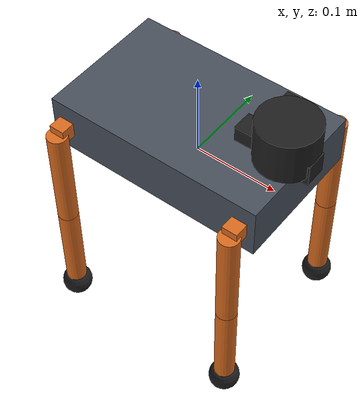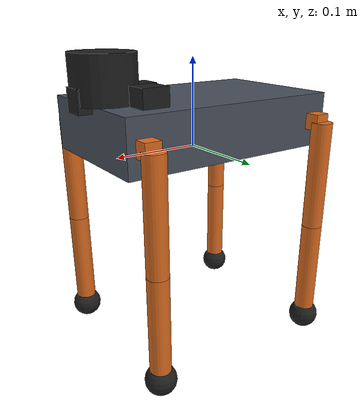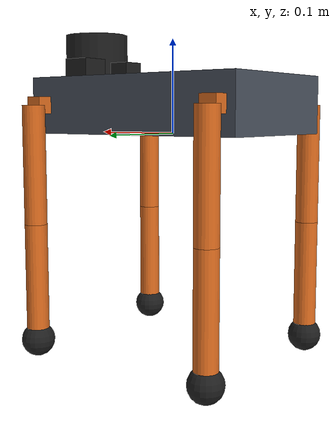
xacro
<?xml version="1.0"?>
<robot name="quadruped" xmlns:xacro="http://www.ros.org/wiki/xacro">

  <xacro:property name="base_length" value="0.26"/>
  <xacro:property name="base_width" value="0.16"/>
  <xacro:property name="base_height" value="0.06"/>
  <xacro:property name="coxa_length" value="0.035563"/>
  <xacro:property name="femur_length" value="0.127063"/>
  <xacro:property name="tibia_length" value="0.127183"/>
  <xacro:property name="link_radius" value="0.012"/>
  <xacro:property name="foot_radius" value="0.018"/>
  <xacro:property name="leg_mass" value="0.10"/>

  <material name="body_gray">
    <color rgba="0.28 0.31 0.36 1.0"/>
  </material>
  <material name="leg_orange">
    <color rgba="0.86 0.42 0.12 1.0"/>
  </material>
  <material name="sensor_black">
    <color rgba="0.12 0.12 0.12 1.0"/>
  </material>

  <link name="base_link">
    <visual>
      <origin xyz="0 0 0" rpy="0 0 0"/>
      <geometry>
        <box size="${base_length} ${base_width} ${base_height}"/>
      </geometry>
      <material name="body_gray"/>
    </visual>
    <collision>
      <origin xyz="0 0 0" rpy="0 0 0"/>
      <geometry>
        <box size="${base_length} ${base_width} ${base_height}"/>
      </geometry>
    </collision>
    <inertial>
      <origin xyz="0 0 0" rpy="0 0 0"/>
      <mass value="1.2"/>
      <inertia ixx="0.02" ixy="0.0" ixz="0.0" iyy="0.03" iyz="0.0" izz="0.04"/>
    </inertial>
  </link>

  <link name="base_footprint"/>
  <joint name="base_footprint_joint" type="fixed">
    <parent link="base_footprint"/>
    <child link="base_link"/>
    <origin xyz="0 0 ${base_height / 2.0}" rpy="0 0 0"/>
  </joint>

  <xacro:macro name="leg" params="prefix mount_x mount_y side_sign">
    <link name="${prefix}_coxa_link">
      <visual>
        <origin xyz="0 ${side_sign * coxa_length / 2.0} 0" rpy="0 0 0"/>
        <geometry>
          <box size="0.018 ${coxa_length} 0.018"/>
        </geometry>
        <material name="leg_orange"/>
      </visual>
      <collision>
        <origin xyz="0 ${side_sign * coxa_length / 2.0} 0" rpy="0 0 0"/>
        <geometry>
          <box size="0.018 ${coxa_length} 0.018"/>
        </geometry>
      </collision>
      <inertial>
        <origin xyz="0 ${side_sign * coxa_length / 2.0} 0" rpy="0 0 0"/>
        <mass value="${leg_mass}"/>
        <inertia ixx="0.001" ixy="0.0" ixz="0.0" iyy="0.001" iyz="0.0" izz="0.001"/>
      </inertial>
    </link>

    <joint name="${prefix}_coxa_joint" type="revolute">
      <parent link="base_link"/>
      <child link="${prefix}_coxa_link"/>
      <origin xyz="${mount_x} ${mount_y} 0.0" rpy="0 0 0"/>
      <axis xyz="1 0 0"/>
      <limit lower="-1.5708" upper="1.5708" effort="50.0" velocity="6.0"/>
    </joint>

    <link name="${prefix}_femur_link">
      <visual>
        <origin xyz="0 0 ${-femur_length / 2.0}" rpy="0 0 0"/>
        <geometry>
          <cylinder radius="${link_radius}" length="${femur_length}"/>
        </geometry>
        <material name="leg_orange"/>
      </visual>
      <collision>
        <origin xyz="0 0 ${-femur_length / 2.0}" rpy="0 0 0"/>
        <geometry>
          <cylinder radius="${link_radius}" length="${femur_length}"/>
        </geometry>
      </collision>
      <inertial>
        <origin xyz="0 0 ${-femur_length / 2.0}" rpy="0 0 0"/>
        <mass value="${leg_mass}"/>
        <inertia ixx="0.001" ixy="0.0" ixz="0.0" iyy="0.001" iyz="0.0" izz="0.001"/>
      </inertial>
    </link>

    <joint name="${prefix}_femur_joint" type="revolute">
      <parent link="${prefix}_coxa_link"/>
      <child link="${prefix}_femur_link"/>
      <origin xyz="0 ${side_sign * coxa_length} 0" rpy="0 0 0"/>
      <axis xyz="0 1 0"/>
      <limit lower="-2.0944" upper="2.0944" effort="50.0" velocity="6.0"/>
    </joint>

    <link name="${prefix}_tibia_link">
      <visual>
        <origin xyz="0 0 ${-tibia_length / 2.0}" rpy="0 0 0"/>
        <geometry>
          <cylinder radius="${link_radius}" length="${tibia_length}"/>
        </geometry>
        <material name="leg_orange"/>
      </visual>
      <collision>
        <origin xyz="0 0 ${-tibia_length / 2.0}" rpy="0 0 0"/>
        <geometry>
          <cylinder radius="${link_radius}" length="${tibia_length}"/>
        </geometry>
      </collision>
      <inertial>
        <origin xyz="0 0 ${-tibia_length / 2.0}" rpy="0 0 0"/>
        <mass value="${leg_mass}"/>
        <inertia ixx="0.001" ixy="0.0" ixz="0.0" iyy="0.001" iyz="0.0" izz="0.001"/>
      </inertial>
    </link>

    <joint name="${prefix}_tibia_joint" type="revolute">
      <parent link="${prefix}_femur_link"/>
      <child link="${prefix}_tibia_link"/>
      <origin xyz="0 0 ${-femur_length}" rpy="0 0 0"/>
      <axis xyz="0 1 0"/>
      <limit lower="-2.0944" upper="2.0944" effort="50.0" velocity="6.0"/>
    </joint>

    <link name="${prefix}_foot_link">
      <visual>
        <origin xyz="0 0 0" rpy="0 0 0"/>
        <geometry>
          <sphere radius="${foot_radius}"/>
        </geometry>
        <material name="sensor_black"/>
      </visual>
      <collision>
        <origin xyz="0 0 0" rpy="0 0 0"/>
        <geometry>
          <sphere radius="${foot_radius}"/>
        </geometry>
      </collision>
      <inertial>
        <origin xyz="0 0 0" rpy="0 0 0"/>
        <mass value="0.02"/>
        <inertia ixx="1e-05" ixy="0.0" ixz="0.0" iyy="1e-05" iyz="0.0" izz="1e-05"/>
      </inertial>
    </link>

    <joint name="${prefix}_foot_fixed_joint" type="fixed">
      <parent link="${prefix}_tibia_link"/>
      <child link="${prefix}_foot_link"/>
      <origin xyz="0 0 ${-tibia_length}" rpy="0 0 0"/>
    </joint>
  </xacro:macro>

  <xacro:leg prefix="FR" mount_x="0.11165" mount_y="-0.061" side_sign="-1"/>
  <xacro:leg prefix="FL" mount_x="0.11165" mount_y="0.061" side_sign="1"/>
  <xacro:leg prefix="RR" mount_x="-0.11165" mount_y="-0.061" side_sign="-1"/>
  <xacro:leg prefix="RL" mount_x="-0.11165" mount_y="0.061" side_sign="1"/>

  <link name="lidar_link">
    <visual>
      <origin xyz="0 0 0" rpy="0 0 0"/>
      <geometry>
        <cylinder radius="0.035" length="0.05"/>
      </geometry>
      <material name="sensor_black"/>
    </visual>
  </link>
  <joint name="lidar_mount_joint" type="fixed">
    <parent link="base_link"/>
    <child link="lidar_link"/>
    <origin xyz="0.11 0.0 0.055" rpy="0 0 0"/>
  </joint>

  <link name="camera_link">
    <visual>
      <geometry>
        <box size="0.09 0.025 0.025"/>
      </geometry>
      <material name="sensor_black"/>
    </visual>
  </link>
  <joint name="camera_mount_joint" type="fixed">
    <parent link="base_link"/>
    <child link="camera_link"/>
    <origin xyz="0.10 0.0 0.035" rpy="0 0 0"/>
  </joint>

  <link name="thermal_link">
    <visual>
      <geometry>
        <box size="0.03 0.03 0.02"/>
      </geometry>
      <material name="sensor_black"/>
    </visual>
  </link>
  <joint name="thermal_mount_joint" type="fixed">
    <parent link="base_link"/>
    <child link="thermal_link"/>
    <origin xyz="0.085 0.045 0.04" rpy="0 0 0"/>
  </joint>

  <link name="gas_link">
    <visual>
      <geometry>
        <box size="0.05 0.05 0.02"/>
      </geometry>
      <material name="sensor_black"/>
    </visual>
  </link>
  <joint name="gas_mount_joint" type="fixed">
    <parent link="base_link"/>
    <child link="gas_link"/>
    <origin xyz="0.0 0.0 -0.015" rpy="0 0 0"/>
  </joint>

  <link name="imu_link">
    <visual>
      <geometry>
        <box size="0.03 0.03 0.01"/>
      </geometry>
      <material name="sensor_black"/>
    </visual>
  </link>
  <joint name="imu_mount_joint" type="fixed">
    <parent link="base_link"/>
    <child link="imu_link"/>
    <origin xyz="0.0 0.0 0.02" rpy="0 0 0"/>
  </joint>

</robot>
